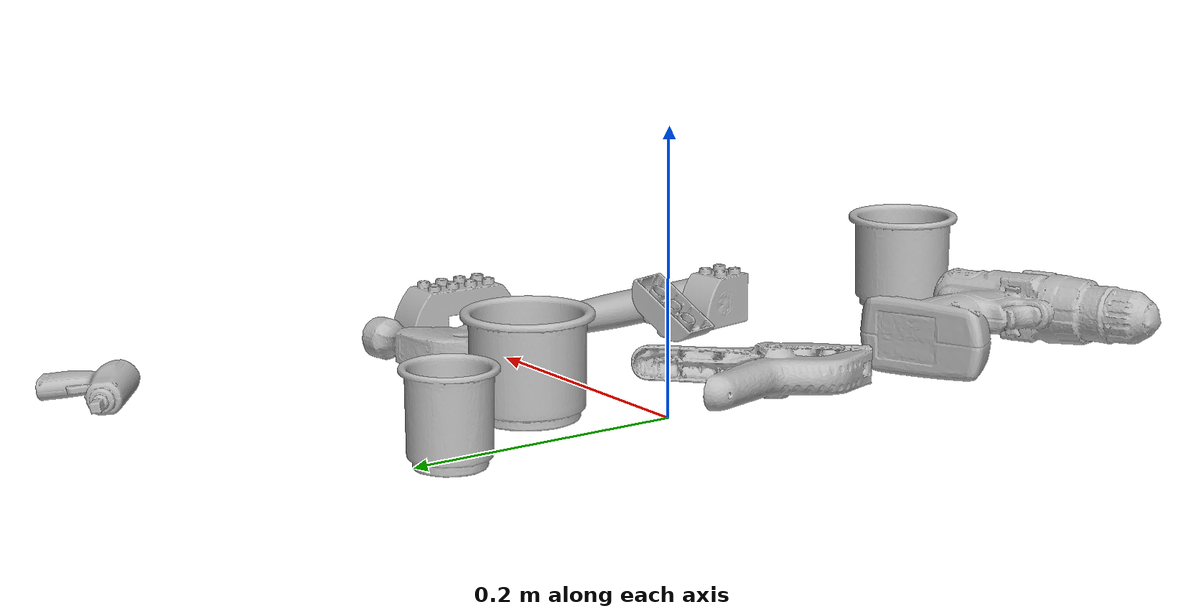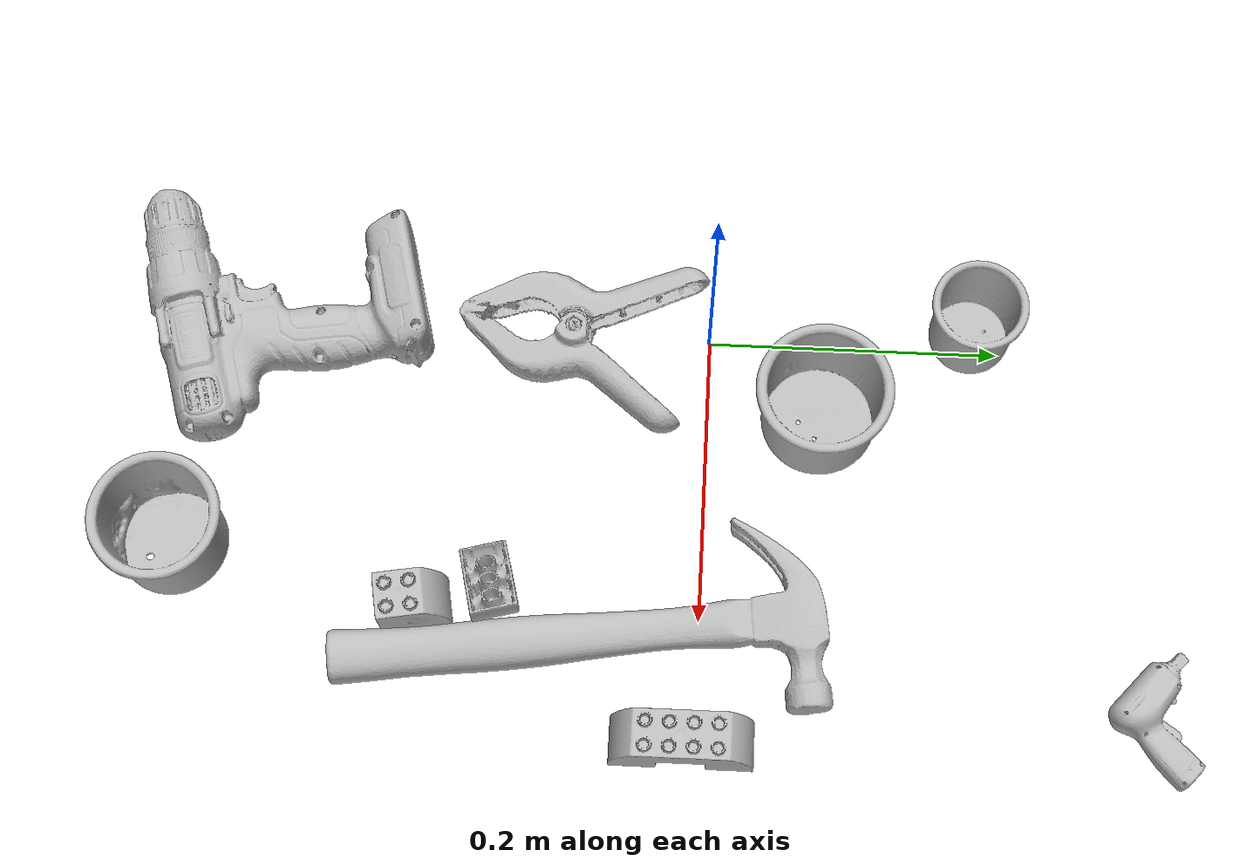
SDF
<sdf version="1.4">
  <world name="default">
    <light name="light1" type="point">
      <pose>0 0 1 0 0 0</pose>
      <diffuse>3 3 3 1</diffuse>
      <specular>3 3 3 1</specular>
    </light>
    <light name="light2" type="point">
      <pose>0 0.5 2 0 0 0</pose>
      <diffuse>1 1 1 1</diffuse>
      <specular>1 1 1 1</specular>
    </light>
    <light name="light3" type="point">
      <pose>0 0.5 2 0 0 0</pose>
      <diffuse>3 3 3 1</diffuse>
      <specular>3 3 3 1</specular>
    </light>
    <scene>
      <ambient>0.7 0.7 0.7</ambient>
    </scene>
    <model name="cup1">
      <link name="link_cup1">
        <collision name="default">
          <geometry>
            <mesh>
              <uri>model://g_cups/collision_meshes/collision.obj</uri>
              <scale>1.0 1.0 1.0</scale>
            </mesh>
          </geometry>
          <surface>
            <friction>
              <ode>
                <mu>0.5</mu>
                <mu2>0.5</mu2>
              </ode>
            </friction>
          <contact>
        <ode>
            <max_vel>0</max_vel>
            <min_depth>0.0001</min_depth>
            <kp>1e8</kp>
        </ode>
    </contact></surface>
        </collision>
        <visual name="default">
          <geometry>
            <mesh>
              <uri>model://g_cups/visual_meshes/visual.dae</uri>
              <scale>1.0 1.0 1.0</scale>
            </mesh>
          </geometry>
        </visual>
        <inertial>
          <mass>0.057625629007816315</mass>
          <pose>-0.0007946282275952399 -4.206500670989044e-05 -0.0021329375449568033 -0.21382697289054745 -0.3141031271963666 0.3112149002706268</pose>
          <inertia>
            <ixx>6.726202e-05</ixx>
            <iyy>6.7033216e-05</iyy>
            <izz>6.967186e-05</izz>
            <ixy>0</ixy>
            <ixz>0</ixz>
            <iyz>0</iyz>
          </inertia>
        </inertial>
      </link>
      <pose>0.16340778768062592 -0.3561197519302368 0.03717884421348572 -0.0009537889933589921 -0.00012021806353875711 1.1497724148501611</pose>
    </model>
    <model name="cup2">
      <link name="link_cup2">
        <collision name="default">
          <geometry>
            <mesh>
              <uri>model://c_cups/collision_meshes/collision.obj</uri>
              <scale>1.0 1.0 1.0</scale>
            </mesh>
          </geometry>
          <surface>
            <friction>
              <ode>
                <mu>0.5</mu>
                <mu2>0.5</mu2>
              </ode>
            </friction>
          <contact>
        <ode>
            <max_vel>0</max_vel>
            <min_depth>0.0001</min_depth>
            <kp>1e8</kp>
        </ode>
    </contact></surface>
        </collision>
        <visual name="default">
          <geometry>
            <mesh>
              <uri>model://c_cups/visual_meshes/visual.dae</uri>
              <scale>1.0 1.0 1.0</scale>
            </mesh>
          </geometry>
        </visual>
        <inertial>
          <mass>0.03477548435330391</mass>
          <pose>0.0007237261161208153 0.0020153902005404234 -0.0012750983005389571 0.30215732346046187 0.013461711857135551 -0.08771879968331305</pose>
          <inertia>
            <ixx>2.5862058e-05</ixx>
            <iyy>2.540504e-05</iyy>
            <izz>2.2871589e-05</izz>
            <ixy>0</ixy>
            <ixz>0</ixz>
            <iyz>0</iyz>
          </inertia>
        </inertial>
      </link>
      <pose>-0.011150751262903214 0.17999064922332764 0.03345870599150658 2.8807943187031512e-05 8.90366696733644e-06 -1.5326849462792826</pose>
    </model>
    <model name="cup3">
      <link name="link_cup3">
        <collision name="default">
          <geometry>
            <mesh>
              <uri>model://h_cups/collision_meshes/collision.obj</uri>
              <scale>1.0 1.0 1.0</scale>
            </mesh>
          </geometry>
          <surface>
            <friction>
              <ode>
                <mu>0.5</mu>
                <mu2>0.5</mu2>
              </ode>
            </friction>
          <contact>
        <ode>
            <max_vel>0</max_vel>
            <min_depth>0.0001</min_depth>
            <kp>1e8</kp>
        </ode>
    </contact></surface>
        </collision>
        <visual name="default">
          <geometry>
            <mesh>
              <uri>model://h_cups/visual_meshes/visual.dae</uri>
              <scale>1.0 1.0 1.0</scale>
            </mesh>
          </geometry>
        </visual>
        <inertial>
          <mass>0.050017159432172775</mass>
          <pose>-2.702731035242323e-05 0.0002301866770721972 -0.0018405388109385967 -0.024362003715272553 0.06545245272055236 0.12885201823743497</pose>
          <inertia>
            <ixx>6.459484e-05</ixx>
            <iyy>6.382401e-05</iyy>
            <izz>6.774227e-05</izz>
            <ixy>0</ixy>
            <ixz>0</ixz>
            <iyz>0</iyz>
          </inertia>
        </inertial>
      </link>
      <pose>0.05603404343128204 0.07628359645605087 0.037758007645606995 -1.6235141932790975e-08 5.611930464179952e-10 2.257763404025853</pose>
    </model>
    <model name="toy1">
      <link name="link_toy1">
        <collision name="default">
          <geometry>
            <mesh>
              <uri>model://e_lego_duplo/collision_meshes/collision.obj</uri>
              <scale>1.0 1.0 1.0</scale>
            </mesh>
          </geometry>
          <surface>
            <friction>
              <ode>
                <mu>0.5</mu>
                <mu2>0.5</mu2>
              </ode>
            </friction>
          <contact>
        <ode>
            <max_vel>0</max_vel>
            <min_depth>0.0001</min_depth>
            <kp>1e8</kp>
        </ode>
    </contact></surface>
        </collision>
        <visual name="default">
          <geometry>
            <mesh>
              <uri>model://e_lego_duplo/visual_meshes/visual.dae</uri>
              <scale>1.0 1.0 1.0</scale>
            </mesh>
          </geometry>
        </visual>
        <inertial>
          <mass>0.09100330621004105</mass>
          <pose>0.0003256048948969692 0.00023485418932978064 0.0019521461799740791 -0.02256778535698338 -6.825395529084007e-05 -0.0076251622764869605</pose>
          <inertia>
            <ixx>1.897719e-05</ixx>
            <iyy>7.788726e-05</iyy>
            <izz>7.584653e-05</izz>
            <ixy>0</ixy>
            <ixz>0</ixz>
            <iyz>0</iyz>
          </inertia>
        </inertial>
      </link>
      <pose>0.283587247133255 -0.007979012094438076 0.021809006109833717 7.589014218907869e-07 -5.710656663769681e-07 1.5757158273410006</pose>
    </model>
    <model name="toy2">
      <link name="link_toy2">
        <collision name="default">
          <geometry>
            <mesh>
              <uri>model://b_toy_airplane/collision_meshes/collision.obj</uri>
              <scale>0.5 0.5 0.5</scale>
            </mesh>
          </geometry>
          <surface>
            <friction>
              <ode>
                <mu>0.5</mu>
                <mu2>0.5</mu2>
              </ode>
            </friction>
          <contact>
        <ode>
            <max_vel>0</max_vel>
            <min_depth>0.0001</min_depth>
            <kp>1e8</kp>
        </ode>
    </contact></surface>
        </collision>
        <visual name="default">
          <geometry>
            <mesh>
              <uri>model://b_toy_airplane/visual_meshes/visual.dae</uri>
              <scale>0.5 0.5 0.5</scale>
            </mesh>
          </geometry>
        </visual>
        <inertial>
          <mass>0.06363805383443832</mass>
          <pose>0.002540681976824999 0.0020077931694686413 0.004771532956510782 -0.0400181041712346 -0.04022185546555606 -0.5601502891427816</pose>
          <inertia>
            <ixx>2.9536302e-05</ixx>
            <iyy>1.1805946e-05</iyy>
            <izz>3.6746103e-05</izz>
            <ixy>0</ixy>
            <ixz>0</ixz>
            <iyz>0</iyz>
          </inertia>
        </inertial>
      </link>
      <pose>0.2561599314212799 0.29967379570007324 0.008488936349749565 0.18487642748244118 0.1134991385369427 2.420092015154746</pose>
    </model>
    <model name="toy3">
      <link name="link_toy3">
        <collision name="default">
          <geometry>
            <mesh>
              <uri>model://d_lego_duplo/collision_meshes/collision.obj</uri>
              <scale>1.0 1.0 1.0</scale>
            </mesh>
          </geometry>
          <surface>
            <friction>
              <ode>
                <mu>0.5</mu>
                <mu2>0.5</mu2>
              </ode>
            </friction>
          <contact>
        <ode>
            <max_vel>0</max_vel>
            <min_depth>0.0001</min_depth>
            <kp>1e8</kp>
        </ode>
    </contact></surface>
        </collision>
        <visual name="default">
          <geometry>
            <mesh>
              <uri>model://d_lego_duplo/visual_meshes/visual.dae</uri>
              <scale>1.0 1.0 1.0</scale>
            </mesh>
          </geometry>
        </visual>
        <inertial>
          <mass>0.05334000289440155</mass>
          <pose>0.002830563811585307 0.0001636617089388892 0.0008589810458943248 0.0801090676593232 -0.3835525121717052 0.0010296416750687279</pose>
          <inertia>
            <ixx>1.0325837e-05</ixx>
            <iyy>1.4655165e-05</iyy>
            <izz>1.4132847e-05</izz>
            <ixy>0</ixy>
            <ixz>0</ixz>
            <iyz>0</iyz>
          </inertia>
        </inertial>
      </link>
      <pose>0.1979094296693802 -0.1907491534948349 0.021739879623055458 -1.807321177564817e-05 1.7364508801253464e-06 -1.3967458266247552</pose>
    </model>
    <model name="toy4">
      <link name="link_toy4">
        <collision name="default">
          <geometry>
            <mesh>
              <uri>model://a_lego_duplo/collision_meshes/collision.obj</uri>
              <scale>1.0 1.0 1.0</scale>
            </mesh>
          </geometry>
          <surface>
            <friction>
              <ode>
                <mu>0.5</mu>
                <mu2>0.5</mu2>
              </ode>
            </friction>
          <contact>
        <ode>
            <max_vel>0</max_vel>
            <min_depth>0.0001</min_depth>
            <kp>1e8</kp>
        </ode>
    </contact></surface>
        </collision>
        <visual name="default">
          <geometry>
            <mesh>
              <uri>model://a_lego_duplo/visual_meshes/visual.dae</uri>
              <scale>1.0 1.0 1.0</scale>
            </mesh>
          </geometry>
        </visual>
        <inertial>
          <mass>0.02371947281062603</mass>
          <pose>-0.00011337659088894725 0.00018517536227591336 0.00036926098982803524 -0.014117032318495473 -0.00012566219654468525 6.139472672246545e-05</pose>
          <inertia>
            <ixx>3.0410272e-06</ixx>
            <iyy>6.8125664e-06</iyy>
            <izz>8.438875e-06</izz>
            <ixy>0</ixy>
            <ixz>0</ixz>
            <iyz>0</iyz>
          </inertia>
        </inertial>
      </link>
      <pose>0.18758176267147064 -0.13959448039531708 0.016769517213106155 -3.1320705887425384 -0.5646230139276656 0.2553333221147976</pose>
    </model>
    <model name="hardware1">
      <link name="link_hardware1">
        <collision name="default">
          <geometry>
            <mesh>
              <uri>model://hammer/collision_meshes/collision.obj</uri>
              <scale>1.0 1.0 1.0</scale>
            </mesh>
          </geometry>
          <surface>
            <friction>
              <ode>
                <mu>0.5</mu>
                <mu2>0.5</mu2>
              </ode>
            </friction>
          <contact>
        <ode>
            <max_vel>0</max_vel>
            <min_depth>0.0001</min_depth>
            <kp>1e8</kp>
        </ode>
    </contact></surface>
        </collision>
        <visual name="default">
          <geometry>
            <mesh>
              <uri>model://hammer/visual_meshes/visual.dae</uri>
              <scale>1.0 1.0 1.0</scale>
            </mesh>
          </geometry>
        </visual>
        <inertial>
          <mass>0.21542595326900482</mass>
          <pose>0.009415775537490845 -0.011892358772456646 -0.00012350629549473524 0.02315578421630864 -0.004792165572519315 -0.012760317567756519</pose>
          <inertia>
            <ixx>9.2278024e-05</ixx>
            <iyy>0.0025004656</iyy>
            <izz>0.002572105</izz>
            <ixy>0</ixy>
            <ixz>0</ixz>
            <iyz>0</iyz>
          </inertia>
        </inertial>
      </link>
      <pose>0.20597940683364868 -0.06900472193956375 0.016267364844679832 -0.005199565774070406 -0.0013799615285590044 1.6987027279251579</pose>
    </model>
    <model name="hardware2">
      <link name="link_hardware2">
        <collision name="default">
          <geometry>
            <mesh>
              <uri>model://large_clamp/collision_meshes/collision.obj</uri>
              <scale>1.0 1.0 1.0</scale>
            </mesh>
          </geometry>
          <surface>
            <friction>
              <ode>
                <mu>0.5</mu>
                <mu2>0.5</mu2>
              </ode>
            </friction>
          <contact>
        <ode>
            <max_vel>0</max_vel>
            <min_depth>0.0001</min_depth>
            <kp>1e8</kp>
        </ode>
    </contact></surface>
        </collision>
        <visual name="default">
          <geometry>
            <mesh>
              <uri>model://large_clamp/visual_meshes/visual.dae</uri>
              <scale>1.0 1.0 1.0</scale>
            </mesh>
          </geometry>
        </visual>
        <inertial>
          <mass>0.16898278892040253</mass>
          <pose>0.006369357462972403 0.00035856629256159067 -0.00018398034444544464 -0.002133075920149734 0.009671594117503977 0.026633212091596442</pose>
          <inertia>
            <ixx>0.00014908903</ixx>
            <iyy>0.00028312797</iyy>
            <izz>0.00040958088</izz>
            <ixy>0</ixy>
            <ixz>0</ixz>
            <iyz>0</iyz>
          </inertia>
        </inertial>
      </link>
      <pose>0.0031234093476086855 -0.0922173485159874 0.018503760918974876 -0.01164689827354636 0.046929966105548705 -1.7478797421190628</pose>
    </model>
    <model name="hardware3">
      <link name="link_hardware3">
        <collision name="default">
          <geometry>
            <mesh>
              <uri>model://power_drill/collision_meshes/collision.obj</uri>
              <scale>1.0 1.0 1.0</scale>
            </mesh>
          </geometry>
          <surface>
            <friction>
              <ode>
                <mu>0.5</mu>
                <mu2>0.5</mu2>
              </ode>
            </friction>
          <contact>
        <ode>
            <max_vel>0</max_vel>
            <min_depth>0.0001</min_depth>
            <kp>1e8</kp>
        </ode>
    </contact></surface>
        </collision>
        <visual name="default">
          <geometry>
            <mesh>
              <uri>model://power_drill/visual_meshes/visual.dae</uri>
              <scale>1.0 1.0 1.0</scale>
            </mesh>
          </geometry>
        </visual>
        <inertial>
          <mass>0.7224003672599792</mass>
          <pose>-0.014780545607209206 0.014369428157806396 0.0012414171360433102 0.0046091635101465946 0.00407302394444766 -0.18362692290061644</pose>
          <inertia>
            <ixx>0.002943816</ixx>
            <iyy>0.0011582379</iyy>
            <izz>0.0038878287</izz>
            <ixy>0</ixy>
            <ixz>0</ixz>
            <iyz>0</iyz>
          </inertia>
        </inertial>
      </link>
      <pose>-0.013770087622106075 -0.2950769066810608 0.02731243334710598 -0.030306024720333263 -0.047252762117361395 -2.8674522585545947</pose>
    </model>
  <physics type="ode">
      <max_contacts>50</max_contacts>
      <ode>
        <solver>
          <type>quick</type>
          <iters>75</iters>
        </solver>
        <constraints>
          <contact_max_correcting_vel>0</contact_max_correcting_vel>
          <contact_surface_layer>0</contact_surface_layer>
        </constraints>
      </ode>
    </physics></world>
</sdf>
